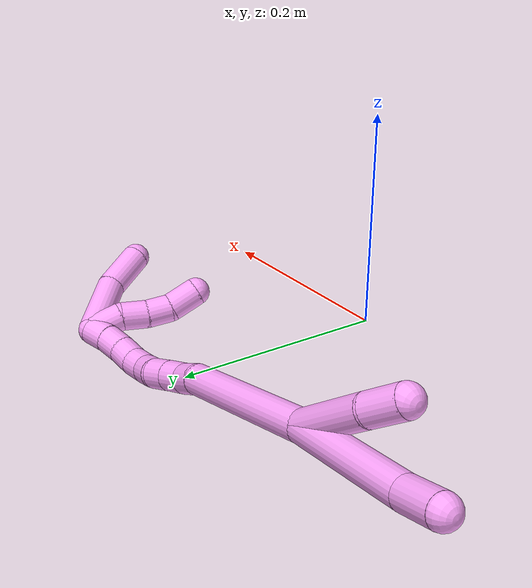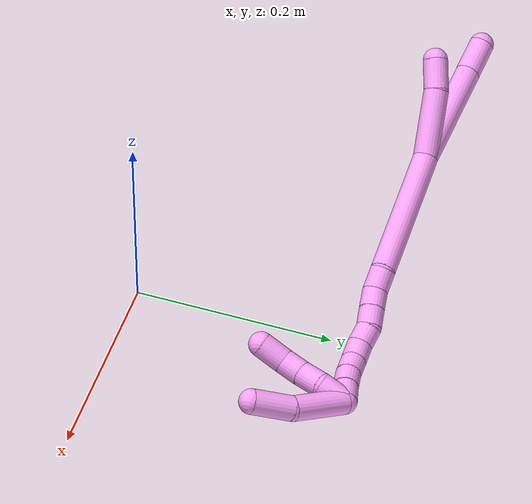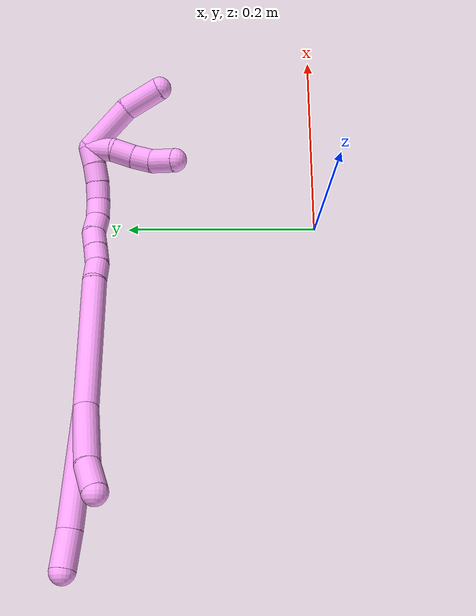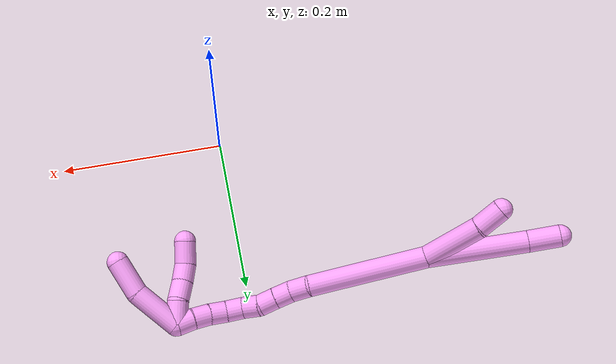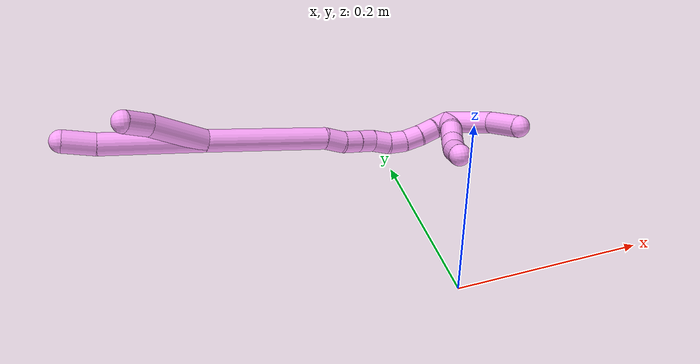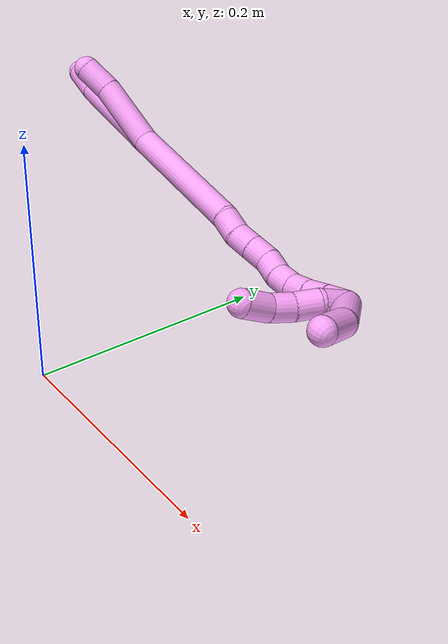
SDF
<sdf version="1.7">
 <world name="default">
  <model name="4">
   <static>0</static>
   <link name="4">
    <collision name="collision-cylinder-e_1_2_8">
     <pose>0.000877 0.004072 0.056854 -0.071498 0.015381 -0.00055</pose>
     <geometry><cylinder><radius>0.0125</radius><length>0.114013</length></cylinder></geometry>
     <surface>
      <friction><ode><mu>1.16</mu><mu2>1.16</mu2><slip1>0</slip1><slip2>0</slip2></ode></friction>
      <contact><ode><kp>1e+06</kp><kd>1</kd><max_vel>0</max_vel><min_depth>0.001</min_depth></ode></contact>
     </surface>
    </collision>
    <visual name="visual-cylinder-e_1_2_8">
     <pose>0.000877 0.004072 0.056854 -0.071498 0.015381 -0.00055</pose>
     <geometry><cylinder><radius>0.0125</radius><length>0.114013</length></cylinder></geometry>
     <material><ambient>1 0.65098 0.996078 1</ambient></material>
    </visual>
    <collision name="collision-cylinder-e_2_8_6">
     <pose>0.004184 0.010181 0.13142 -0.114503 0.135475 -0.007776</pose>
     <geometry><cylinder><radius>0.0125</radius><length>0.035987</length></cylinder></geometry>
     <surface>
      <friction><ode><mu>1.16</mu><mu2>1.16</mu2><slip1>0</slip1><slip2>0</slip2></ode></friction>
      <contact><ode><kp>1e+06</kp><kd>1</kd><max_vel>0</max_vel><min_depth>0.001</min_depth></ode></contact>
     </surface>
    </collision>
    <visual name="visual-cylinder-e_2_8_6">
     <pose>0.004184 0.010181 0.13142 -0.114503 0.135475 -0.007776</pose>
     <geometry><cylinder><radius>0.0125</radius><length>0.035987</length></cylinder></geometry>
     <material><ambient>1 0.65098 0.996078 1</ambient></material>
    </visual>
    <collision name="collision-cylinder-e_1_2_9">
     <pose>0.016343 -0.002328 0.030234 0.076851 0.494312 0.0194</pose>
     <geometry><cylinder><radius>0.0125</radius><length>0.068895</length></cylinder></geometry>
     <surface>
      <friction><ode><mu>1.16</mu><mu2>1.16</mu2><slip1>0</slip1><slip2>0</slip2></ode></friction>
      <contact><ode><kp>1e+06</kp><kd>1</kd><max_vel>0</max_vel><min_depth>0.001</min_depth></ode></contact>
     </surface>
    </collision>
    <visual name="visual-cylinder-e_1_2_9">
     <pose>0.016343 -0.002328 0.030234 0.076851 0.494312 0.0194</pose>
     <geometry><cylinder><radius>0.0125</radius><length>0.068895</length></cylinder></geometry>
     <material><ambient>1 0.65098 0.996078 1</ambient></material>
    </visual>
    <collision name="collision-cylinder-e_2_9_5">
     <pose>0.03976 -0.008668 0.073725 0.293896 0.472241 0.071197</pose>
     <geometry><cylinder><radius>0.0125</radius><length>0.031105</length></cylinder></geometry>
     <surface>
      <friction><ode><mu>1.16</mu><mu2>1.16</mu2><slip1>0</slip1><slip2>0</slip2></ode></friction>
      <contact><ode><kp>1e+06</kp><kd>1</kd><max_vel>0</max_vel><min_depth>0.001</min_depth></ode></contact>
     </surface>
    </collision>
    <visual name="visual-cylinder-e_2_9_5">
     <pose>0.03976 -0.008668 0.073725 0.293896 0.472241 0.071197</pose>
     <geometry><cylinder><radius>0.0125</radius><length>0.031105</length></cylinder></geometry>
     <material><ambient>1 0.65098 0.996078 1</ambient></material>
    </visual>
    <collision name="collision-cylinder-e_1_2_10">
     <pose>-0.005881 -0.000489 -0.068253 3.13443 -0.085944 -2.9753</pose>
     <geometry><cylinder><radius>0.0125</radius><length>0.137015</length></cylinder></geometry>
     <surface>
      <friction><ode><mu>1.16</mu><mu2>1.16</mu2><slip1>0</slip1><slip2>0</slip2></ode></friction>
      <contact><ode><kp>1e+06</kp><kd>1</kd><max_vel>0</max_vel><min_depth>0.001</min_depth></ode></contact>
     </surface>
    </collision>
    <visual name="visual-cylinder-e_1_2_10">
     <pose>-0.005881 -0.000489 -0.068253 3.13443 -0.085944 -2.9753</pose>
     <geometry><cylinder><radius>0.0125</radius><length>0.137015</length></cylinder></geometry>
     <material><ambient>1 0.65098 0.996078 1</ambient></material>
    </visual>
    <collision name="collision-cylinder-e_2_10_11">
     <pose>-0.015198 -0.001859 -0.147244 3.05972 -0.308797 -2.62692</pose>
     <geometry><cylinder><radius>0.0125</radius><length>0.022618</length></cylinder></geometry>
     <surface>
      <friction><ode><mu>1.16</mu><mu2>1.16</mu2><slip1>0</slip1><slip2>0</slip2></ode></friction>
      <contact><ode><kp>1e+06</kp><kd>1</kd><max_vel>0</max_vel><min_depth>0.001</min_depth></ode></contact>
     </surface>
    </collision>
    <visual name="visual-cylinder-e_2_10_11">
     <pose>-0.015198 -0.001859 -0.147244 3.05972 -0.308797 -2.62692</pose>
     <geometry><cylinder><radius>0.0125</radius><length>0.022618</length></cylinder></geometry>
     <material><ambient>1 0.65098 0.996078 1</ambient></material>
    </visual>
    <collision name="collision-cylinder-e_3_11_12">
     <pose>-0.020359 -0.001419 -0.167749 -3.00706 -0.173178 1.82163</pose>
     <geometry><cylinder><radius>0.0125</radius><length>0.020012</length></cylinder></geometry>
     <surface>
      <friction><ode><mu>1.16</mu><mu2>1.16</mu2><slip1>0</slip1><slip2>0</slip2></ode></friction>
      <contact><ode><kp>1e+06</kp><kd>1</kd><max_vel>0</max_vel><min_depth>0.001</min_depth></ode></contact>
     </surface>
    </collision>
    <visual name="visual-cylinder-e_3_11_12">
     <pose>-0.020359 -0.001419 -0.167749 -3.00706 -0.173178 1.82163</pose>
     <geometry><cylinder><radius>0.0125</radius><length>0.020012</length></cylinder></geometry>
     <material><ambient>1 0.65098 0.996078 1</ambient></material>
    </visual>
    <collision name="collision-cylinder-e_4_12_13">
     <pose>-0.023997 0.001445 -0.187262 -2.98468 -0.19154 1.7699</pose>
     <geometry><cylinder><radius>0.0125</radius><length>0.020102</length></cylinder></geometry>
     <surface>
      <friction><ode><mu>1.16</mu><mu2>1.16</mu2><slip1>0</slip1><slip2>0</slip2></ode></friction>
      <contact><ode><kp>1e+06</kp><kd>1</kd><max_vel>0</max_vel><min_depth>0.001</min_depth></ode></contact>
     </surface>
    </collision>
    <visual name="visual-cylinder-e_4_12_13">
     <pose>-0.023997 0.001445 -0.187262 -2.98468 -0.19154 1.7699</pose>
     <geometry><cylinder><radius>0.0125</radius><length>0.020102</length></cylinder></geometry>
     <material><ambient>1 0.65098 0.996078 1</ambient></material>
    </visual>
    <collision name="collision-cylinder-e_5_13_14">
     <pose>-0.027646 0.00131 -0.206727 2.97072 -0.174225 -1.59031</pose>
     <geometry><cylinder><radius>0.0125</radius><length>0.020029</length></cylinder></geometry>
     <surface>
      <friction><ode><mu>1.16</mu><mu2>1.16</mu2><slip1>0</slip1><slip2>0</slip2></ode></friction>
      <contact><ode><kp>1e+06</kp><kd>1</kd><max_vel>0</max_vel><min_depth>0.001</min_depth></ode></contact>
     </surface>
    </collision>
    <visual name="visual-cylinder-e_5_13_14">
     <pose>-0.027646 0.00131 -0.206727 2.97072 -0.174225 -1.59031</pose>
     <geometry><cylinder><radius>0.0125</radius><length>0.020029</length></cylinder></geometry>
     <material><ambient>1 0.65098 0.996078 1</ambient></material>
    </visual>
    <collision name="collision-cylinder-e_6_14_15">
     <pose>-0.029146 -0.000128 -0.226535 -3.11792 0.023443 -1.56095</pose>
     <geometry><cylinder><radius>0.0125</radius><length>0.020188</length></cylinder></geometry>
     <surface>
      <friction><ode><mu>1.16</mu><mu2>1.16</mu2><slip1>0</slip1><slip2>0</slip2></ode></friction>
      <contact><ode><kp>1e+06</kp><kd>1</kd><max_vel>0</max_vel><min_depth>0.001</min_depth></ode></contact>
     </surface>
    </collision>
    <visual name="visual-cylinder-e_6_14_15">
     <pose>-0.029146 -0.000128 -0.226535 -3.11792 0.023443 -1.56095</pose>
     <geometry><cylinder><radius>0.0125</radius><length>0.020188</length></cylinder></geometry>
     <material><ambient>1 0.65098 0.996078 1</ambient></material>
    </visual>
    <collision name="collision-cylinder-e_7_15_16">
     <pose>-0.026437 0.001012 -0.246288 -3.04857 0.249343 -2.43037</pose>
     <geometry><cylinder><radius>0.0125</radius><length>0.020034</length></cylinder></geometry>
     <surface>
      <friction><ode><mu>1.16</mu><mu2>1.16</mu2><slip1>0</slip1><slip2>0</slip2></ode></friction>
      <contact><ode><kp>1e+06</kp><kd>1</kd><max_vel>0</max_vel><min_depth>0.001</min_depth></ode></contact>
     </surface>
    </collision>
    <visual name="visual-cylinder-e_7_15_16">
     <pose>-0.026437 0.001012 -0.246288 -3.04857 0.249343 -2.43037</pose>
     <geometry><cylinder><radius>0.0125</radius><length>0.020034</length></cylinder></geometry>
     <material><ambient>1 0.65098 0.996078 1</ambient></material>
    </visual>
    <collision name="collision-cylinder-e_8_16_17">
     <pose>-0.021347 0.004017 -0.265374 -2.922 0.264904 -1.7591</pose>
     <geometry><cylinder><radius>0.0125</radius><length>0.020002</length></cylinder></geometry>
     <surface>
      <friction><ode><mu>1.16</mu><mu2>1.16</mu2><slip1>0</slip1><slip2>0</slip2></ode></friction>
      <contact><ode><kp>1e+06</kp><kd>1</kd><max_vel>0</max_vel><min_depth>0.001</min_depth></ode></contact>
     </surface>
    </collision>
    <visual name="visual-cylinder-e_8_16_17">
     <pose>-0.021347 0.004017 -0.265374 -2.922 0.264904 -1.7591</pose>
     <geometry><cylinder><radius>0.0125</radius><length>0.020002</length></cylinder></geometry>
     <material><ambient>1 0.65098 0.996078 1</ambient></material>
    </visual>
    <collision name="collision-cylinder-e_9_17_1">
     <pose>-0.017004 0.008979 -0.28422 -2.84699 0.17327 -1.05917</pose>
     <geometry><cylinder><radius>0.0125</radius><length>0.02</length></cylinder></geometry>
     <surface>
      <friction><ode><mu>1.16</mu><mu2>1.16</mu2><slip1>0</slip1><slip2>0</slip2></ode></friction>
      <contact><ode><kp>1e+06</kp><kd>1</kd><max_vel>0</max_vel><min_depth>0.001</min_depth></ode></contact>
     </surface>
    </collision>
    <visual name="visual-cylinder-e_9_17_1">
     <pose>-0.017004 0.008979 -0.28422 -2.84699 0.17327 -1.05917</pose>
     <geometry><cylinder><radius>0.0125</radius><length>0.02</length></cylinder></geometry>
     <material><ambient>1 0.65098 0.996078 1</ambient></material>
    </visual>
    <collision name="collision-cylinder-e_1_1_18">
     <pose>-0.002526 -0.006628 -0.311944 2.35157 0.4561 1.01589</pose>
     <geometry><cylinder><radius>0.0125</radius><length>0.057915</length></cylinder></geometry>
     <surface>
      <friction><ode><mu>1.16</mu><mu2>1.16</mu2><slip1>0</slip1><slip2>0</slip2></ode></friction>
      <contact><ode><kp>1e+06</kp><kd>1</kd><max_vel>0</max_vel><min_depth>0.001</min_depth></ode></contact>
     </surface>
    </collision>
    <visual name="visual-cylinder-e_1_1_18">
     <pose>-0.002526 -0.006628 -0.311944 2.35157 0.4561 1.01589</pose>
     <geometry><cylinder><radius>0.0125</radius><length>0.057915</length></cylinder></geometry>
     <material><ambient>1 0.65098 0.996078 1</ambient></material>
    </visual>
    <collision name="collision-cylinder-e_2_18_4">
     <pose>0.020359 -0.041995 -0.33763 1.98291 0.502293 0.747467</pose>
     <geometry><cylinder><radius>0.0125</radius><length>0.042085</length></cylinder></geometry>
     <surface>
      <friction><ode><mu>1.16</mu><mu2>1.16</mu2><slip1>0</slip1><slip2>0</slip2></ode></friction>
      <contact><ode><kp>1e+06</kp><kd>1</kd><max_vel>0</max_vel><min_depth>0.001</min_depth></ode></contact>
     </surface>
    </collision>
    <visual name="visual-cylinder-e_2_18_4">
     <pose>0.020359 -0.041995 -0.33763 1.98291 0.502293 0.747467</pose>
     <geometry><cylinder><radius>0.0125</radius><length>0.042085</length></cylinder></geometry>
     <material><ambient>1 0.65098 0.996078 1</ambient></material>
    </visual>
    <collision name="collision-cylinder-e_1_1_19">
     <pose>-0.010103 -0.000554 -0.290476 1.32034 0.384558 0.300027</pose>
     <geometry><cylinder><radius>0.0125</radius><length>0.027602</length></cylinder></geometry>
     <surface>
      <friction><ode><mu>1.16</mu><mu2>1.16</mu2><slip1>0</slip1><slip2>0</slip2></ode></friction>
      <contact><ode><kp>1e+06</kp><kd>1</kd><max_vel>0</max_vel><min_depth>0.001</min_depth></ode></contact>
     </surface>
    </collision>
    <visual name="visual-cylinder-e_1_1_19">
     <pose>-0.010103 -0.000554 -0.290476 1.32034 0.384558 0.300027</pose>
     <geometry><cylinder><radius>0.0125</radius><length>0.027602</length></cylinder></geometry>
     <material><ambient>1 0.65098 0.996078 1</ambient></material>
    </visual>
    <collision name="collision-cylinder-e_2_19_20">
     <pose>-0.004343 -0.024036 -0.283486 1.23912 0.049635 0.035405</pose>
     <geometry><cylinder><radius>0.0125</radius><length>0.023484</length></cylinder></geometry>
     <surface>
      <friction><ode><mu>1.16</mu><mu2>1.16</mu2><slip1>0</slip1><slip2>0</slip2></ode></friction>
      <contact><ode><kp>1e+06</kp><kd>1</kd><max_vel>0</max_vel><min_depth>0.001</min_depth></ode></contact>
     </surface>
    </collision>
    <visual name="visual-cylinder-e_2_19_20">
     <pose>-0.004343 -0.024036 -0.283486 1.23912 0.049635 0.035405</pose>
     <geometry><cylinder><radius>0.0125</radius><length>0.023484</length></cylinder></geometry>
     <material><ambient>1 0.65098 0.996078 1</ambient></material>
    </visual>
    <collision name="collision-cylinder-e_3_20_21">
     <pose>-0.001396 -0.045192 -0.276255 1.24395 0.218864 0.157208</pose>
     <geometry><cylinder><radius>0.0125</radius><length>0.02178</length></cylinder></geometry>
     <surface>
      <friction><ode><mu>1.16</mu><mu2>1.16</mu2><slip1>0</slip1><slip2>0</slip2></ode></friction>
      <contact><ode><kp>1e+06</kp><kd>1</kd><max_vel>0</max_vel><min_depth>0.001</min_depth></ode></contact>
     </surface>
    </collision>
    <visual name="visual-cylinder-e_3_20_21">
     <pose>-0.001396 -0.045192 -0.276255 1.24395 0.218864 0.157208</pose>
     <geometry><cylinder><radius>0.0125</radius><length>0.02178</length></cylinder></geometry>
     <material><ambient>1 0.65098 0.996078 1</ambient></material>
    </visual>
    <collision name="collision-cylinder-e_4_21_3">
     <pose>0.007637 -0.066816 -0.270384 1.36125 0.513844 0.419209</pose>
     <geometry><cylinder><radius>0.0125</radius><length>0.027134</length></cylinder></geometry>
     <surface>
      <friction><ode><mu>1.16</mu><mu2>1.16</mu2><slip1>0</slip1><slip2>0</slip2></ode></friction>
      <contact><ode><kp>1e+06</kp><kd>1</kd><max_vel>0</max_vel><min_depth>0.001</min_depth></ode></contact>
     </surface>
    </collision>
    <visual name="visual-cylinder-e_4_21_3">
     <pose>0.007637 -0.066816 -0.270384 1.36125 0.513844 0.419209</pose>
     <geometry><cylinder><radius>0.0125</radius><length>0.027134</length></cylinder></geometry>
     <material><ambient>1 0.65098 0.996078 1</ambient></material>
    </visual>
    <collision name="collision-sphere-3">
     <pose>0.014306 -0.078373 -0.267926 0 -0 0</pose>
     <geometry><sphere><radius>0.0125</radius></sphere></geometry>
     <surface>
      <friction><ode><mu>1.16</mu><mu2>1.16</mu2><slip1>0</slip1><slip2>0</slip2></ode></friction>
      <contact><ode><kp>1e+06</kp><kd>1</kd><max_vel>0</max_vel><min_depth>0.001</min_depth></ode></contact>
     </surface>
    </collision>
    <visual name="visual-sphere-3">
     <pose>0.014306 -0.078373 -0.267926 0 -0 0</pose>
     <geometry><sphere><radius>0.0125</radius></sphere></geometry>
     <material><ambient>1 0.65098 0.996078 1</ambient></material>
    </visual>
    <collision name="collision-sphere-21">
     <pose>0.000969 -0.05526 -0.272842 0 -0 0</pose>
     <geometry><sphere><radius>0.0125</radius></sphere></geometry>
     <surface>
      <friction><ode><mu>1.16</mu><mu2>1.16</mu2><slip1>0</slip1><slip2>0</slip2></ode></friction>
      <contact><ode><kp>1e+06</kp><kd>1</kd><max_vel>0</max_vel><min_depth>0.001</min_depth></ode></contact>
     </surface>
    </collision>
    <visual name="visual-sphere-21">
     <pose>0.000969 -0.05526 -0.272842 0 -0 0</pose>
     <geometry><sphere><radius>0.0125</radius></sphere></geometry>
     <material><ambient>1 0.65098 0.996078 1</ambient></material>
    </visual>
    <collision name="collision-sphere-20">
     <pose>-0.00376 -0.035125 -0.279668 0 -0 0</pose>
     <geometry><sphere><radius>0.0125</radius></sphere></geometry>
     <surface>
      <friction><ode><mu>1.16</mu><mu2>1.16</mu2><slip1>0</slip1><slip2>0</slip2></ode></friction>
      <contact><ode><kp>1e+06</kp><kd>1</kd><max_vel>0</max_vel><min_depth>0.001</min_depth></ode></contact>
     </surface>
    </collision>
    <visual name="visual-sphere-20">
     <pose>-0.00376 -0.035125 -0.279668 0 -0 0</pose>
     <geometry><sphere><radius>0.0125</radius></sphere></geometry>
     <material><ambient>1 0.65098 0.996078 1</ambient></material>
    </visual>
    <collision name="collision-sphere-19">
     <pose>-0.004925 -0.012948 -0.287305 0 -0 0</pose>
     <geometry><sphere><radius>0.0125</radius></sphere></geometry>
     <surface>
      <friction><ode><mu>1.16</mu><mu2>1.16</mu2><slip1>0</slip1><slip2>0</slip2></ode></friction>
      <contact><ode><kp>1e+06</kp><kd>1</kd><max_vel>0</max_vel><min_depth>0.001</min_depth></ode></contact>
     </surface>
    </collision>
    <visual name="visual-sphere-19">
     <pose>-0.004925 -0.012948 -0.287305 0 -0 0</pose>
     <geometry><sphere><radius>0.0125</radius></sphere></geometry>
     <material><ambient>1 0.65098 0.996078 1</ambient></material>
    </visual>
    <collision name="collision-sphere-10">
     <pose>-0.011761 -0.000978 -0.136506 0 -0 0</pose>
     <geometry><sphere><radius>0.0125</radius></sphere></geometry>
     <surface>
      <friction><ode><mu>1.16</mu><mu2>1.16</mu2><slip1>0</slip1><slip2>0</slip2></ode></friction>
      <contact><ode><kp>1e+06</kp><kd>1</kd><max_vel>0</max_vel><min_depth>0.001</min_depth></ode></contact>
     </surface>
    </collision>
    <visual name="visual-sphere-10">
     <pose>-0.011761 -0.000978 -0.136506 0 -0 0</pose>
     <geometry><sphere><radius>0.0125</radius></sphere></geometry>
     <material><ambient>1 0.65098 0.996078 1</ambient></material>
    </visual>
    <collision name="collision-sphere-5">
     <pose>0.046835 -0.012681 0.086982 0 -0 0</pose>
     <geometry><sphere><radius>0.0125</radius></sphere></geometry>
     <surface>
      <friction><ode><mu>1.16</mu><mu2>1.16</mu2><slip1>0</slip1><slip2>0</slip2></ode></friction>
      <contact><ode><kp>1e+06</kp><kd>1</kd><max_vel>0</max_vel><min_depth>0.001</min_depth></ode></contact>
     </surface>
    </collision>
    <visual name="visual-sphere-5">
     <pose>0.046835 -0.012681 0.086982 0 -0 0</pose>
     <geometry><sphere><radius>0.0125</radius></sphere></geometry>
     <material><ambient>1 0.65098 0.996078 1</ambient></material>
    </visual>
    <collision name="collision-sphere-6">
     <pose>0.006614 0.012218 0.149132 0 -0 0</pose>
     <geometry><sphere><radius>0.0125</radius></sphere></geometry>
     <surface>
      <friction><ode><mu>1.16</mu><mu2>1.16</mu2><slip1>0</slip1><slip2>0</slip2></ode></friction>
      <contact><ode><kp>1e+06</kp><kd>1</kd><max_vel>0</max_vel><min_depth>0.001</min_depth></ode></contact>
     </surface>
    </collision>
    <visual name="visual-sphere-6">
     <pose>0.006614 0.012218 0.149132 0 -0 0</pose>
     <geometry><sphere><radius>0.0125</radius></sphere></geometry>
     <material><ambient>1 0.65098 0.996078 1</ambient></material>
    </visual>
    <collision name="collision-sphere-9">
     <pose>0.032685 -0.004656 0.060469 0 -0 0</pose>
     <geometry><sphere><radius>0.0125</radius></sphere></geometry>
     <surface>
      <friction><ode><mu>1.16</mu><mu2>1.16</mu2><slip1>0</slip1><slip2>0</slip2></ode></friction>
      <contact><ode><kp>1e+06</kp><kd>1</kd><max_vel>0</max_vel><min_depth>0.001</min_depth></ode></contact>
     </surface>
    </collision>
    <visual name="visual-sphere-9">
     <pose>0.032685 -0.004656 0.060469 0 -0 0</pose>
     <geometry><sphere><radius>0.0125</radius></sphere></geometry>
     <material><ambient>1 0.65098 0.996078 1</ambient></material>
    </visual>
    <collision name="collision-sphere-2">
     <geometry><sphere><radius>0.0125</radius></sphere></geometry>
     <surface>
      <friction><ode><mu>1.16</mu><mu2>1.16</mu2><slip1>0</slip1><slip2>0</slip2></ode></friction>
      <contact><ode><kp>1e+06</kp><kd>1</kd><max_vel>0</max_vel><min_depth>0.001</min_depth></ode></contact>
     </surface>
    </collision>
    <visual name="visual-sphere-2">
     <geometry><sphere><radius>0.0125</radius></sphere></geometry>
     <material><ambient>1 0.65098 0.996078 1</ambient></material>
    </visual>
    <collision name="collision-sphere-8">
     <pose>0.001754 0.008144 0.113708 0 -0 0</pose>
     <geometry><sphere><radius>0.0125</radius></sphere></geometry>
     <surface>
      <friction><ode><mu>1.16</mu><mu2>1.16</mu2><slip1>0</slip1><slip2>0</slip2></ode></friction>
      <contact><ode><kp>1e+06</kp><kd>1</kd><max_vel>0</max_vel><min_depth>0.001</min_depth></ode></contact>
     </surface>
    </collision>
    <visual name="visual-sphere-8">
     <pose>0.001754 0.008144 0.113708 0 -0 0</pose>
     <geometry><sphere><radius>0.0125</radius></sphere></geometry>
     <material><ambient>1 0.65098 0.996078 1</ambient></material>
    </visual>
    <collision name="collision-sphere-11">
     <pose>-0.018635 -0.002741 -0.157982 0 -0 0</pose>
     <geometry><sphere><radius>0.0125</radius></sphere></geometry>
     <surface>
      <friction><ode><mu>1.16</mu><mu2>1.16</mu2><slip1>0</slip1><slip2>0</slip2></ode></friction>
      <contact><ode><kp>1e+06</kp><kd>1</kd><max_vel>0</max_vel><min_depth>0.001</min_depth></ode></contact>
     </surface>
    </collision>
    <visual name="visual-sphere-11">
     <pose>-0.018635 -0.002741 -0.157982 0 -0 0</pose>
     <geometry><sphere><radius>0.0125</radius></sphere></geometry>
     <material><ambient>1 0.65098 0.996078 1</ambient></material>
    </visual>
    <collision name="collision-sphere-12">
     <pose>-0.022083 -9.7e-05 -0.177516 0 -0 0</pose>
     <geometry><sphere><radius>0.0125</radius></sphere></geometry>
     <surface>
      <friction><ode><mu>1.16</mu><mu2>1.16</mu2><slip1>0</slip1><slip2>0</slip2></ode></friction>
      <contact><ode><kp>1e+06</kp><kd>1</kd><max_vel>0</max_vel><min_depth>0.001</min_depth></ode></contact>
     </surface>
    </collision>
    <visual name="visual-sphere-12">
     <pose>-0.022083 -9.7e-05 -0.177516 0 -0 0</pose>
     <geometry><sphere><radius>0.0125</radius></sphere></geometry>
     <material><ambient>1 0.65098 0.996078 1</ambient></material>
    </visual>
    <collision name="collision-sphere-13">
     <pose>-0.02591 0.002987 -0.197008 0 -0 0</pose>
     <geometry><sphere><radius>0.0125</radius></sphere></geometry>
     <surface>
      <friction><ode><mu>1.16</mu><mu2>1.16</mu2><slip1>0</slip1><slip2>0</slip2></ode></friction>
      <contact><ode><kp>1e+06</kp><kd>1</kd><max_vel>0</max_vel><min_depth>0.001</min_depth></ode></contact>
     </surface>
    </collision>
    <visual name="visual-sphere-13">
     <pose>-0.02591 0.002987 -0.197008 0 -0 0</pose>
     <geometry><sphere><radius>0.0125</radius></sphere></geometry>
     <material><ambient>1 0.65098 0.996078 1</ambient></material>
    </visual>
    <collision name="collision-sphere-14">
     <pose>-0.029382 -0.000367 -0.216446 0 -0 0</pose>
     <geometry><sphere><radius>0.0125</radius></sphere></geometry>
     <surface>
      <friction><ode><mu>1.16</mu><mu2>1.16</mu2><slip1>0</slip1><slip2>0</slip2></ode></friction>
      <contact><ode><kp>1e+06</kp><kd>1</kd><max_vel>0</max_vel><min_depth>0.001</min_depth></ode></contact>
     </surface>
    </collision>
    <visual name="visual-sphere-14">
     <pose>-0.029382 -0.000367 -0.216446 0 -0 0</pose>
     <geometry><sphere><radius>0.0125</radius></sphere></geometry>
     <material><ambient>1 0.65098 0.996078 1</ambient></material>
    </visual>
    <collision name="collision-sphere-15">
     <pose>-0.028909 0.000111 -0.236623 0 -0 0</pose>
     <geometry><sphere><radius>0.0125</radius></sphere></geometry>
     <surface>
      <friction><ode><mu>1.16</mu><mu2>1.16</mu2><slip1>0</slip1><slip2>0</slip2></ode></friction>
      <contact><ode><kp>1e+06</kp><kd>1</kd><max_vel>0</max_vel><min_depth>0.001</min_depth></ode></contact>
     </surface>
    </collision>
    <visual name="visual-sphere-15">
     <pose>-0.028909 0.000111 -0.236623 0 -0 0</pose>
     <geometry><sphere><radius>0.0125</radius></sphere></geometry>
     <material><ambient>1 0.65098 0.996078 1</ambient></material>
    </visual>
    <collision name="collision-sphere-16">
     <pose>-0.023965 0.001914 -0.255954 0 -0 0</pose>
     <geometry><sphere><radius>0.0125</radius></sphere></geometry>
     <surface>
      <friction><ode><mu>1.16</mu><mu2>1.16</mu2><slip1>0</slip1><slip2>0</slip2></ode></friction>
      <contact><ode><kp>1e+06</kp><kd>1</kd><max_vel>0</max_vel><min_depth>0.001</min_depth></ode></contact>
     </surface>
    </collision>
    <visual name="visual-sphere-16">
     <pose>-0.023965 0.001914 -0.255954 0 -0 0</pose>
     <geometry><sphere><radius>0.0125</radius></sphere></geometry>
     <material><ambient>1 0.65098 0.996078 1</ambient></material>
    </visual>
    <collision name="collision-sphere-17">
     <pose>-0.018728 0.006119 -0.274794 0 -0 0</pose>
     <geometry><sphere><radius>0.0125</radius></sphere></geometry>
     <surface>
      <friction><ode><mu>1.16</mu><mu2>1.16</mu2><slip1>0</slip1><slip2>0</slip2></ode></friction>
      <contact><ode><kp>1e+06</kp><kd>1</kd><max_vel>0</max_vel><min_depth>0.001</min_depth></ode></contact>
     </surface>
    </collision>
    <visual name="visual-sphere-17">
     <pose>-0.018728 0.006119 -0.274794 0 -0 0</pose>
     <geometry><sphere><radius>0.0125</radius></sphere></geometry>
     <material><ambient>1 0.65098 0.996078 1</ambient></material>
    </visual>
    <collision name="collision-sphere-1">
     <pose>-0.01528 0.01184 -0.293647 0 -0 0</pose>
     <geometry><sphere><radius>0.0125</radius></sphere></geometry>
     <surface>
      <friction><ode><mu>1.16</mu><mu2>1.16</mu2><slip1>0</slip1><slip2>0</slip2></ode></friction>
      <contact><ode><kp>1e+06</kp><kd>1</kd><max_vel>0</max_vel><min_depth>0.001</min_depth></ode></contact>
     </surface>
    </collision>
    <visual name="visual-sphere-1">
     <pose>-0.01528 0.01184 -0.293647 0 -0 0</pose>
     <geometry><sphere><radius>0.0125</radius></sphere></geometry>
     <material><ambient>1 0.65098 0.996078 1</ambient></material>
    </visual>
    <collision name="collision-sphere-18">
     <pose>0.010229 -0.025096 -0.330242 0 -0 0</pose>
     <geometry><sphere><radius>0.0125</radius></sphere></geometry>
     <surface>
      <friction><ode><mu>1.16</mu><mu2>1.16</mu2><slip1>0</slip1><slip2>0</slip2></ode></friction>
      <contact><ode><kp>1e+06</kp><kd>1</kd><max_vel>0</max_vel><min_depth>0.001</min_depth></ode></contact>
     </surface>
    </collision>
    <visual name="visual-sphere-18">
     <pose>0.010229 -0.025096 -0.330242 0 -0 0</pose>
     <geometry><sphere><radius>0.0125</radius></sphere></geometry>
     <material><ambient>1 0.65098 0.996078 1</ambient></material>
    </visual>
    <collision name="collision-sphere-4">
     <pose>0.03049 -0.058894 -0.345017 0 -0 0</pose>
     <geometry><sphere><radius>0.0125</radius></sphere></geometry>
     <surface>
      <friction><ode><mu>1.16</mu><mu2>1.16</mu2><slip1>0</slip1><slip2>0</slip2></ode></friction>
      <contact><ode><kp>1e+06</kp><kd>1</kd><max_vel>0</max_vel><min_depth>0.001</min_depth></ode></contact>
     </surface>
    </collision>
    <visual name="visual-sphere-4">
     <pose>0.03049 -0.058894 -0.345017 0 -0 0</pose>
     <geometry><sphere><radius>0.0125</radius></sphere></geometry>
     <material><ambient>1 0.65098 0.996078 1</ambient></material>
    </visual>
    <inertial>
     <pose>-0.001811 -0.006576 -0.11888 0 -0 0</pose>
     <mass>0.75</mass>
     <inertia><ixx>-4.4e-05</ixx><ixy>0</ixy><ixz>0</ixz><iyy>0.000357</iyy><iyz>0</iyz><izz>-0</izz></inertia>
    </inertial>
   </link>
   <pose>-0.203859 0.232305 0.066939 0.728677 -1.42372 -0.747023</pose>
  </model>
 </world>
</sdf>
